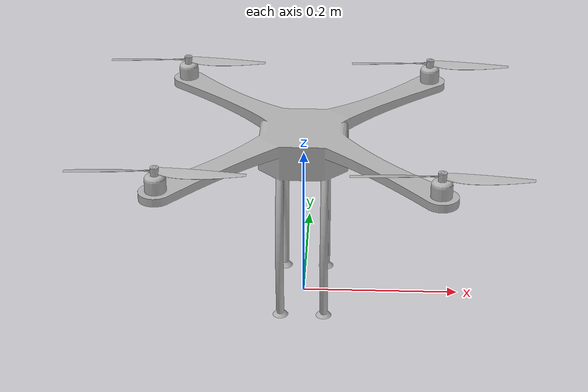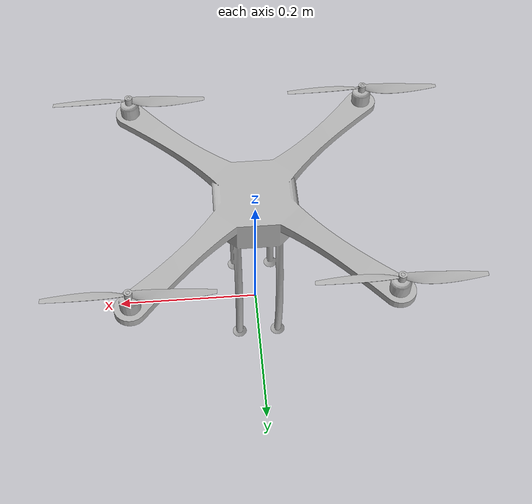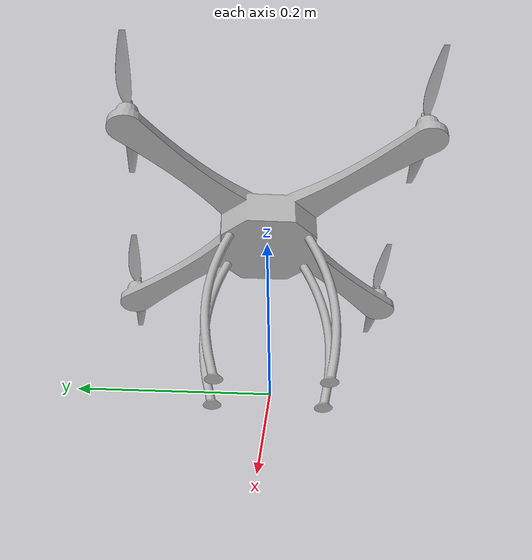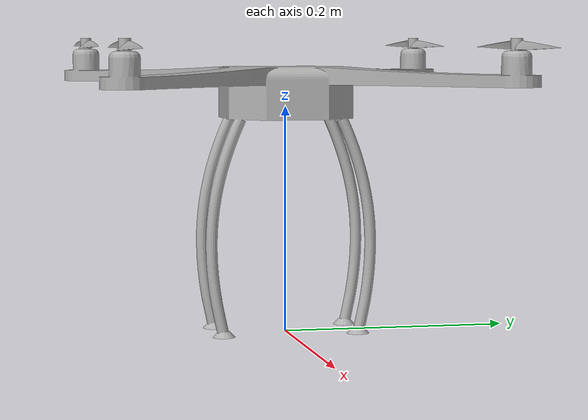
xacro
<?xml version="1.0" ?>
<robot name="quadcopter" xmlns:xacro="http://www.ros.org/wiki/xacro">

<xacro:include filename="$(find quadcopter_description)/urdf/materials.xacro" />
<xacro:include filename="$(find quadcopter_description)/urdf/quadcopter.trans" />
<xacro:include filename="$(find quadcopter_description)/urdf/quadcopter.gazebo" />
<link name="dummy">
   </link>
<link name="base_link">
  <inertial>
    <origin xyz="-4.7432749483691953e-07 -2.725764951815054e-08 0.20921008016735257" rpy="0 0 0"/>
    <mass value="0.9057066257259532"/>
    <inertia ixx="0.006753" iyy="0.006521" izz="0.0106" ixy="-0.0" iyz="-0.0" ixz="-0.0"/>
  </inertial>
  <visual>
    <origin xyz="0 0 0" rpy="0 0 0"/>
    <geometry>
      <mesh filename="package://quadcopter_description/meshes/base_link.stl" scale="0.001 0.001 0.001"/>
    </geometry>
    <material name="silver"/>
  </visual>
  <collision>
    <origin xyz="0 0 0" rpy="0 0 0"/>
    <geometry>
      <mesh filename="package://quadcopter_description/meshes/base_link.stl" scale="0.001 0.001 0.001"/>
    </geometry>
  </collision>
</link>
<joint name="dummy_joint" type="fixed">
     <parent link="dummy"/>
     <child link="base_link"/>
</joint>
<link name="propeller_1">
  <inertial>
    <origin xyz="-3.6946080161914807e-07 -4.126375907631541e-09 -0.0010760779654073183" rpy="0 0 0"/>
    <mass value="0.005927703872591894"/>
    <inertia ixx="0.0" iyy="1.2e-05" izz="1.2e-05" ixy="0.0" iyz="-0.0" ixz="-0.0"/>
  </inertial>
  <visual>
    <origin xyz="-0.16057 -0.16057 -0.255" rpy="0 0 0"/>
    <geometry>
      <mesh filename="package://quadcopter_description/meshes/propeller_1.stl" scale="0.001 0.001 0.001"/>
    </geometry>
    <material name="silver"/>
  </visual>
  <collision>
    <origin xyz="-0.16057 -0.16057 -0.255" rpy="0 0 0"/>
    <geometry>
      <mesh filename="package://quadcopter_description/meshes/propeller_1.stl" scale="0.001 0.001 0.001"/>
    </geometry>
  </collision>
</link>

<link name="propeller_2">
  <inertial>
    <origin xyz="-3.694608015913925e-07 -1.937970742216244e-08 -0.0010760779654073183" rpy="0 0 0"/>
    <mass value="0.005927703872591894"/>
    <inertia ixx="0.0" iyy="1.2e-05" izz="1.2e-05" ixy="0.0" iyz="-0.0" ixz="-0.0"/>
  </inertial>
  <visual>
    <origin xyz="-0.16057 0.16057 -0.255" rpy="0 0 0"/>
    <geometry>
      <mesh filename="package://quadcopter_description/meshes/propeller_2.stl" scale="0.001 0.001 0.001"/>
    </geometry>
    <material name="silver"/>
  </visual>
  <collision>
    <origin xyz="-0.16057 0.16057 -0.255" rpy="0 0 0"/>
    <geometry>
      <mesh filename="package://quadcopter_description/meshes/propeller_2.stl" scale="0.001 0.001 0.001"/>
    </geometry>
  </collision>
</link>

<link name="propeller_3">
  <inertial>
    <origin xyz="-3.847141331059234e-07 -1.937970742216244e-08 -0.0010760779654073183" rpy="0 0 0"/>
    <mass value="0.005927703872591894"/>
    <inertia ixx="0.0" iyy="1.2e-05" izz="1.2e-05" ixy="0.0" iyz="-0.0" ixz="-0.0"/>
  </inertial>
  <visual>
    <origin xyz="0.16057 0.16057 -0.255" rpy="0 0 0"/>
    <geometry>
      <mesh filename="package://quadcopter_description/meshes/propeller_3.stl" scale="0.001 0.001 0.001"/>
    </geometry>
    <material name="silver"/>
  </visual>
  <collision>
    <origin xyz="0.16057 0.16057 -0.255" rpy="0 0 0"/>
    <geometry>
      <mesh filename="package://quadcopter_description/meshes/propeller_3.stl" scale="0.001 0.001 0.001"/>
    </geometry>
  </collision>
</link>

<link name="propeller_4">
  <inertial>
    <origin xyz="-3.847141331059234e-07 -4.126375907631541e-09 -0.0010760779654073183" rpy="0 0 0"/>
    <mass value="0.005927703872591894"/>
    <inertia ixx="0.0" iyy="1.2e-05" izz="1.2e-05" ixy="0.0" iyz="-0.0" ixz="-0.0"/>
  </inertial>
  <visual>
    <origin xyz="0.16057 -0.16057 -0.255" rpy="0 0 0"/>
    <geometry>
      <mesh filename="package://quadcopter_description/meshes/propeller_4.stl" scale="0.001 0.001 0.001"/>
    </geometry>
    <material name="silver"/>
  </visual>
  <collision>
    <origin xyz="0.16057 -0.16057 -0.255" rpy="0 0 0"/>
    <geometry>
      <mesh filename="package://quadcopter_description/meshes/propeller_4.stl" scale="0.001 0.001 0.001"/>
    </geometry>
  </collision>
</link>

<joint name="Revolute_5" type="continuous">
  <origin xyz="0.16057 0.16057 0.255" rpy="0 0 0"/>
  <parent link="base_link"/>
  <child link="propeller_1"/>
  <axis xyz="0.0 0.0 1.0"/>
</joint>

<joint name="Revolute_6" type="continuous">
  <origin xyz="0.16057 -0.16057 0.255" rpy="0 0 0"/>
  <parent link="base_link"/>
  <child link="propeller_2"/>
  <axis xyz="0.0 0.0 1.0"/>
</joint>

<joint name="Revolute_7" type="continuous">
  <origin xyz="-0.16057 -0.16057 0.255" rpy="0 0 0"/>
  <parent link="base_link"/>
  <child link="propeller_3"/>
  <axis xyz="0.0 0.0 1.0"/>
</joint>

<joint name="Revolute_8" type="continuous">
  <origin xyz="-0.16057 0.16057 0.255" rpy="0 0 0"/>
  <parent link="base_link"/>
  <child link="propeller_4"/>
  <axis xyz="0.0 0.0 1.0"/>
</joint>

</robot>

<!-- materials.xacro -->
<robot name="quadcopter" xmlns:xacro="http://www.ros.org/wiki/xacro" >

<material name="silver">
  <color rgba="0.700 0.700 0.700 1.000"/>
</material>

</robot>
